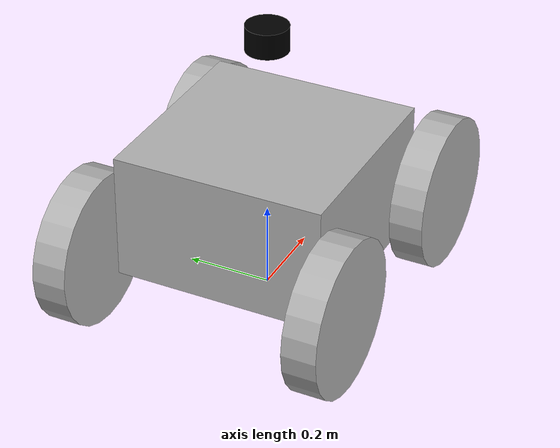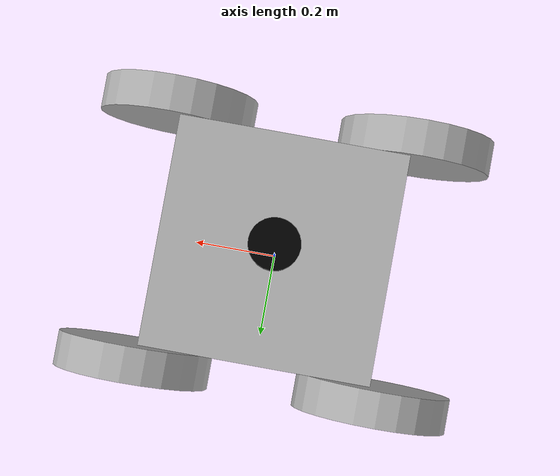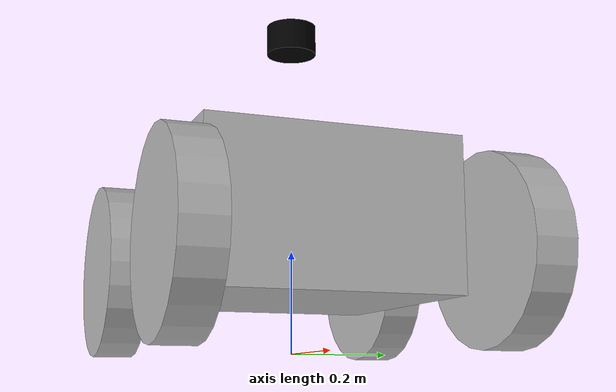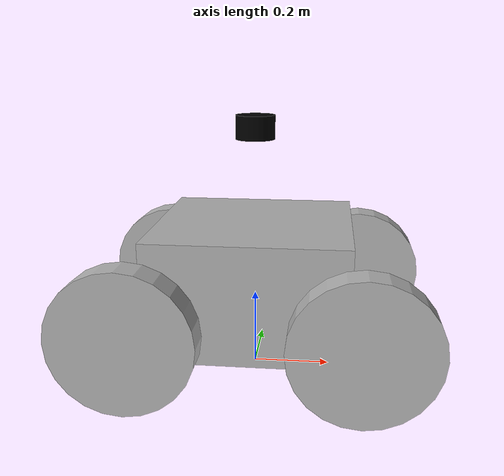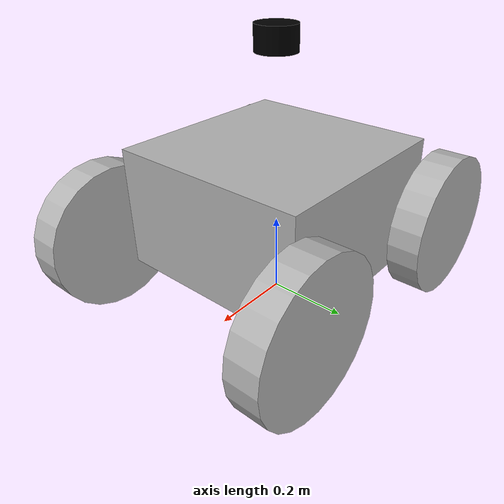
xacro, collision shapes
<?xml version="1.0" ?>
<robot name="diadem" xmlns:xacro="http://www.ros.org/wiki/xacro">

<xacro:include filename="$(find diadem_description)/urdf/materials.xacro" />
<xacro:include filename="$(find diadem_description)/urdf/diadem.trans" />
<xacro:include filename="$(find diadem_description)/urdf/diadem.gazebo" />

<link name="base_link">
  <inertial>
    <origin xyz="-0.000442563326493991 0.0005036289593653383 0.2715469717743787" rpy="0 0 0"/>
    <mass value="120.00"/>
    <inertia ixx="5.68" iyy="9.60" izz="13.28" ixy="0.0228" iyz="-0.0036" ixz="-0.0076"/>
  </inertial>
  <visual>
    <origin xyz="0 0 0" rpy="0 0 0"/>
    <geometry>
      <mesh filename="package://diadem_description/meshes/base_link.dae" scale="0.001 0.001 0.001"/>
    </geometry>
    <material name="silver"/>
  </visual>
  <collision name="base_link_collision">
    <origin xyz="0 0 0.25" rpy="0 0 0"/>
    <geometry>
      <box size="0.5 0.5 0.3"/>
    </geometry>
  </collision>
</link>

<link name="RR_wheel_1">
  <inertial>
    <origin xyz="-2.521477218631052e-06 0.0008355153634170276 1.014704255930532e-05" rpy="0 0 0"/>
    <mass value="11.400677627805935"/>
    <inertia ixx="0.140117" iyy="0.23813" izz="0.140334" ixy="-0.0" iyz="3e-06" ixz="-9e-06"/>
  </inertial>
  <visual>
    <origin xyz="0.28 0.3 -0.18" rpy="0 0 0"/>
    <geometry>
      <mesh filename="package://diadem_description/meshes/RR_wheel_1.dae" scale="0.001 0.001 0.001"/>
    </geometry>
    <material name="silver"/>
  </visual>
  <collision name="RR_wheel_1_collision">
    <origin xyz="0 0 0" rpy="1.57079632679 0 0"/>
    <geometry>
      <cylinder radius="0.18" length="0.08"/>
    </geometry>
  </collision>
</link>

<link name="FL_wheel_1">
  <inertial>
    <origin xyz="2.521477222738877e-06 -0.0008355153634171941 1.014704255666854e-05" rpy="0 0 0"/>
    <mass value="11.400677627805926"/>
    <inertia ixx="0.140117" iyy="0.23813" izz="0.140334" ixy="-0.0" iyz="-3e-06" ixz="9e-06"/>
  </inertial>
  <visual>
    <origin xyz="-0.28 -0.3 -0.18" rpy="0 0 0"/>
    <geometry>
      <mesh filename="package://diadem_description/meshes/FL_wheel_1.dae" scale="0.001 0.001 0.001"/>
    </geometry>
    <material name="silver"/>
  </visual>
  <collision name="FL_wheel_1_collision">
    <origin xyz="0 0 0" rpy="1.57079632679 0 0"/>
    <geometry>
      <cylinder radius="0.18" length="0.08"/>
    </geometry>
  </collision>
</link>

<!-- Add this LiDAR link after the existing links -->
<link name="lidar">
  <inertial>
    <origin xyz="0 0 0" rpy="0 0 0"/>
    <mass value="0.5"/>
    <inertia ixx="0.001" iyy="0.001" izz="0.001" ixy="0.0" iyz="0.0" ixz="0.0"/>
  </inertial>
  <visual>
    <origin xyz="0 0 0" rpy="0 0 0"/>
    <geometry>
      <cylinder radius="0.05" length="0.06"/>
    </geometry>
    <material name="black"/>
  </visual>
  <collision>
    <origin xyz="0 0 0" rpy="0 0 0"/>
    <geometry>
      <cylinder radius="0.05" length="0.06"/>
    </geometry>
  </collision>
</link>

<link name="RL_wheel_1">
  <inertial>
    <origin xyz="2.5214772154669163e-06 -0.0008355153634184154 1.0147042556557517e-05" rpy="0 0 0"/>
    <mass value="11.400677627805788"/>
    <inertia ixx="0.140117" iyy="0.23813" izz="0.140334" ixy="-0.0" iyz="-3e-06" ixz="9e-06"/>
  </inertial>
  <visual>
    <origin xyz="0.28 -0.3 -0.18" rpy="0 0 0"/>
    <geometry>
      <mesh filename="package://diadem_description/meshes/RL_wheel_1.dae" scale="0.001 0.001 0.001"/>
    </geometry>
    <material name="silver"/>
  </visual>
  <collision name="RL_wheel_1_collision">
    <origin xyz="0 0 0" rpy="1.57079632679 0 0"/>
    <geometry>
      <cylinder radius="0.18" length="0.08"/>
    </geometry>
  </collision>
</link>

<link name="FR_wheel_1">
  <inertial>
    <origin xyz="-2.521477210637446e-06 0.0008355153634174162 1.0147042559055519e-05" rpy="0 0 0"/>
    <mass value="11.400677627805969"/>
    <inertia ixx="0.140117" iyy="0.23813" izz="0.140334" ixy="-0.0" iyz="3e-06" ixz="-9e-06"/>
  </inertial>
  <visual>
    <origin xyz="-0.28 0.3 -0.18" rpy="0 0 0"/>
    <geometry>
      <mesh filename="package://diadem_description/meshes/FR_wheel_1.dae" scale="0.001 0.001 0.001"/>
    </geometry>
    <material name="silver"/>
  </visual>
  <collision name="FR_wheel_1_collision">
    <origin xyz="0 0 0" rpy="1.57079632679 0 0"/>
    <geometry>
      <cylinder radius="0.18" length="0.08"/>
    </geometry>
  </collision>
</link>

<link name="imu_link"/>
<link name="camera_link"/>
<joint name="imu_joint" type="fixed">
    <origin rpy="0 0 0" xyz="0.0 0.0 0.310"/>
    <parent link="base_link"/>
    <child link="imu_link"/>
</joint>

<joint name="RR_wheel_joint" type="continuous">
  <origin xyz="-0.28 -0.3 0.18" rpy="0 0 0"/>
  <parent link="base_link"/>
  <child link="RR_wheel_1"/>
  <axis xyz="-0.0 1.0 -0.0"/>
</joint>

<joint name="FL_wheel_joint" type="continuous">
  <origin xyz="0.28 0.3 0.18" rpy="0 0 0"/>
  <parent link="base_link"/>
  <child link="FL_wheel_1"/>
  <axis xyz="0.0 1.0 0.0"/>
</joint>

<joint name="RL_wheel_joint" type="continuous">
  <origin xyz="-0.28 0.3 0.18" rpy="0 0 0"/>
  <parent link="base_link"/>
  <child link="RL_wheel_1"/>
  <axis xyz="-0.0 1.0 0.0"/>
</joint>
<!-- Add this LiDAR joint after the existing joints -->
<joint name="lidar_joint" type="fixed">
  <origin xyz="0.0 0.0 0.64" rpy="0 0 0"/>
  <parent link="base_link"/>
  <child link="lidar"/>
</joint>

<joint name="FR_wheel_joint" type="continuous">
  <origin xyz="0.28 -0.3 0.18" rpy="0 0 0"/>
  <parent link="base_link"/>
  <child link="FR_wheel_1"/>
  <axis xyz="-0.0 1.0 -0.0"/>
</joint>

  <joint name="camera_joint" type="fixed">
    <parent link="base_link"/>
    <child link="camera_link"/>
    <origin xyz="0 0 0.94" rpy="0.0 0.45 0"/>
  </joint>

</robot>

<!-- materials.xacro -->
<robot name="diadem" xmlns:xacro="http://www.ros.org/wiki/xacro" >

<material name="silver">
  <color rgba="0.700 0.700 0.700 1.000"/>
</material>
<material name="black">
  <color rgba="0 0 0 1"/>
</material>

</robot>
